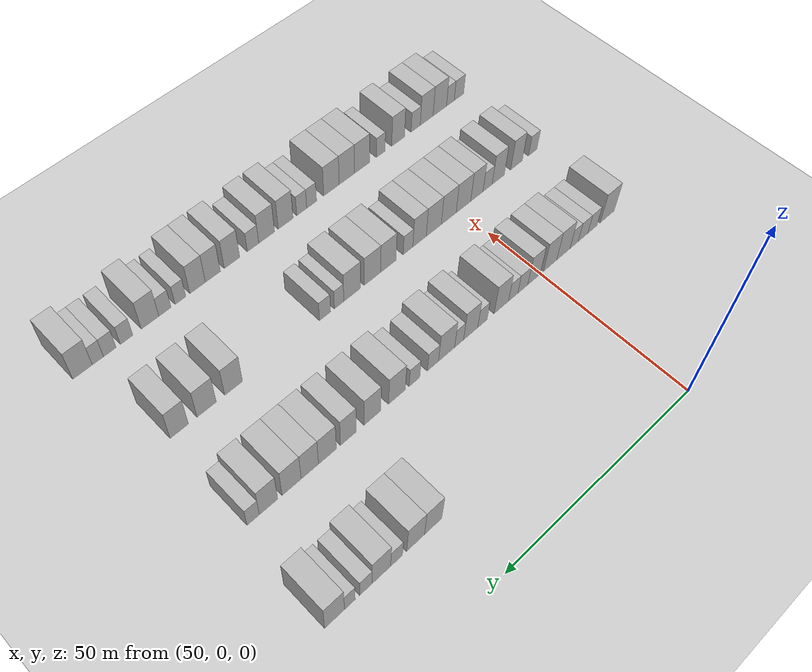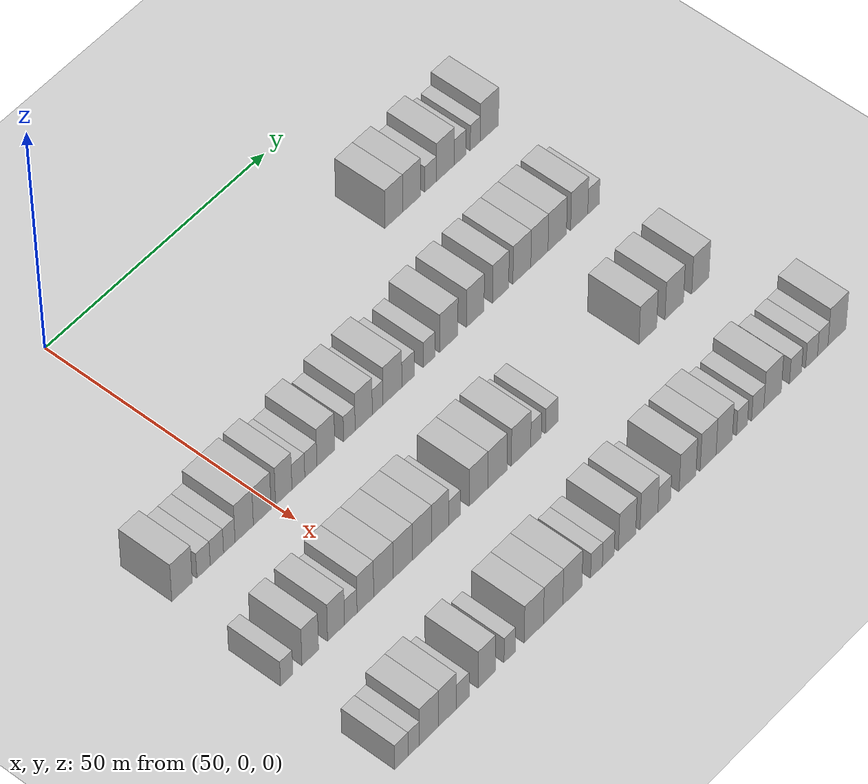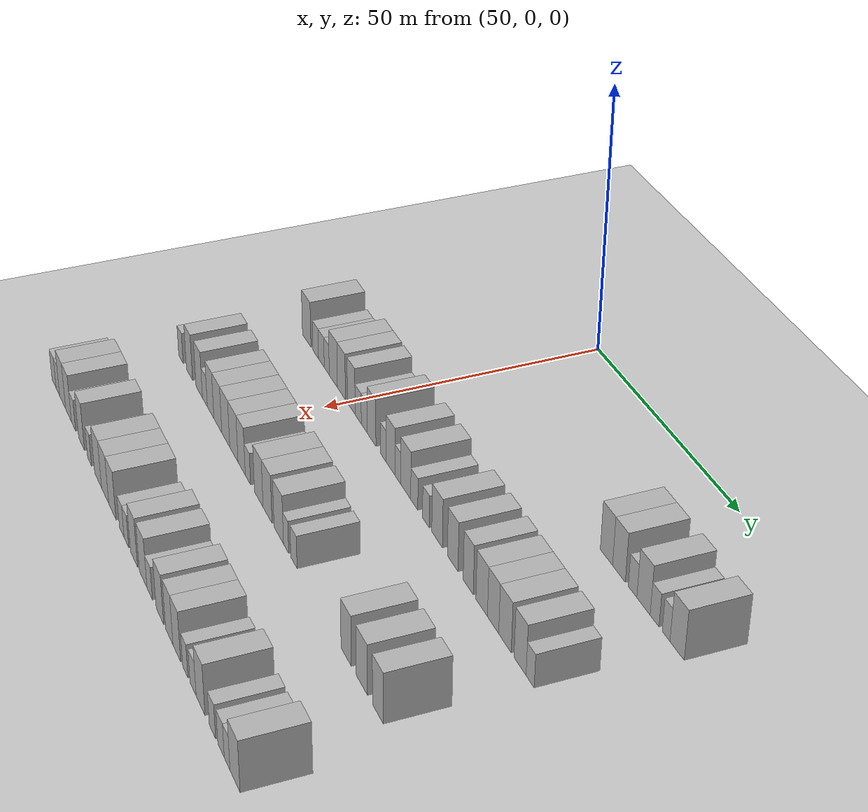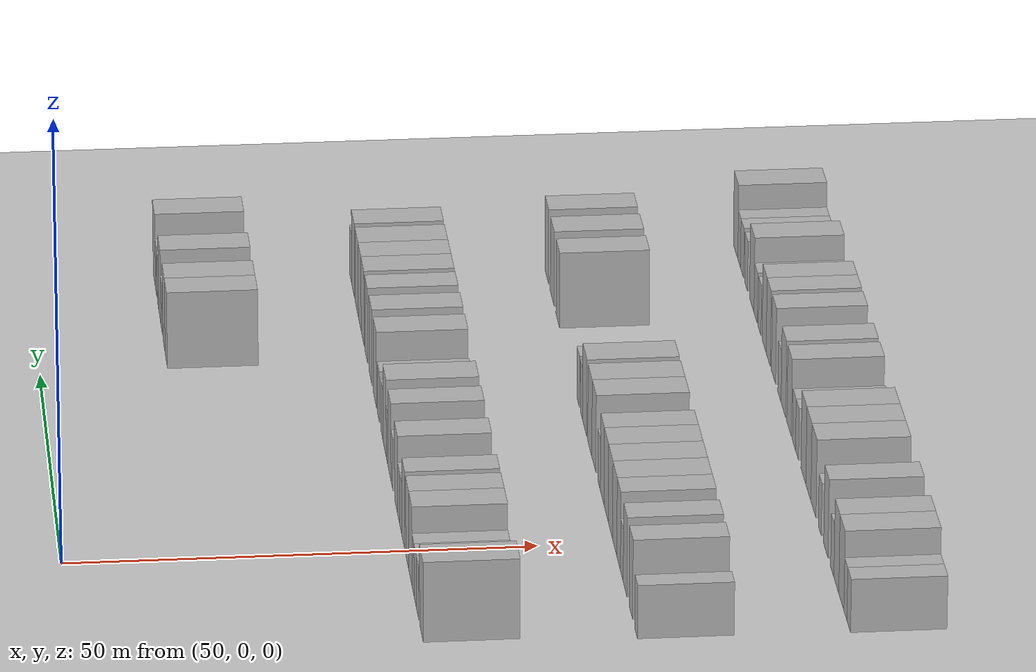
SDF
<sdf version="1.6">
 <world name="default">
  <include>
   <name>ground_plane_2</name>
   <uri>model://HANNAS_ground_plane</uri>
   <pose>100 0 0  0 0 0</pose>
  </include>
  <model name="building_490">
   <static>1</static>
   <pose>69.0000 52.8391 0 0.000000 0.000000 0.000000</pose>
   <link name="link">
    <pose>0 0 4.50 0 0 0</pose>
    <collision name="collision"><geometry><box><size>10.0000 4.1948 9.0000</size></box></geometry></collision>
    <visual name="visual">
     <cast_shadows>0</cast_shadows>
     <geometry><box><size>10.0000 4.1948 9.0000</size></box></geometry>
     <material>
      <script>
       <uri>model://HANNAS_wall/materials/scripts</uri>
       <uri>model://HANNAS_wall/materials/textures</uri>
       <name>vrc/HANNAS_wall</name>
      </script>
     </material>
    </visual>
   </link>
  </model>
  <model name="building_491">
   <static>1</static>
   <pose>69.0000 57.0705 0 0.000000 0.000000 0.000000</pose>
   <link name="link">
    <pose>0 0 4.50 0 0 0</pose>
    <collision name="collision"><geometry><box><size>10.0000 4.2680 9.0000</size></box></geometry></collision>
    <visual name="visual">
     <cast_shadows>0</cast_shadows>
     <geometry><box><size>10.0000 4.2680 9.0000</size></box></geometry>
     <material>
      <script>
       <uri>model://HANNAS_wall/materials/scripts</uri>
       <uri>model://HANNAS_wall/materials/textures</uri>
       <name>vrc/HANNAS_wall</name>
      </script>
     </material>
    </visual>
   </link>
  </model>
  <model name="building_492">
   <static>1</static>
   <pose>69.0000 61.6023 0 0.000000 0.000000 0.000000</pose>
   <link name="link">
    <pose>0 0 3.00 0 0 0</pose>
    <collision name="collision"><geometry><box><size>10.0000 2.7957 6.0000</size></box></geometry></collision>
    <visual name="visual">
     <cast_shadows>0</cast_shadows>
     <geometry><box><size>10.0000 2.7957 6.0000</size></box></geometry>
     <material>
      <script>
       <uri>model://HANNAS_wall/materials/scripts</uri>
       <uri>model://HANNAS_wall/materials/textures</uri>
       <name>vrc/HANNAS_wall</name>
      </script>
     </material>
    </visual>
   </link>
  </model>
  <model name="building_493">
   <static>1</static>
   <pose>69.0000 65.1499 0 0.000000 0.000000 0.000000</pose>
   <link name="link">
    <pose>0 0 4.50 0 0 0</pose>
    <collision name="collision"><geometry><box><size>10.0000 4.2995 9.0000</size></box></geometry></collision>
    <visual name="visual">
     <cast_shadows>0</cast_shadows>
     <geometry><box><size>10.0000 4.2995 9.0000</size></box></geometry>
     <material>
      <script>
       <uri>model://HANNAS_wall/materials/scripts</uri>
       <uri>model://HANNAS_wall/materials/textures</uri>
       <name>vrc/HANNAS_wall</name>
      </script>
     </material>
    </visual>
   </link>
  </model>
  <model name="building_494">
   <static>1</static>
   <pose>69.0000 68.6985 0 0.000000 0.000000 0.000000</pose>
   <link name="link">
    <pose>0 0 3.00 0 0 0</pose>
    <collision name="collision"><geometry><box><size>10.0000 2.7977 6.0000</size></box></geometry></collision>
    <visual name="visual">
     <cast_shadows>0</cast_shadows>
     <geometry><box><size>10.0000 2.7977 6.0000</size></box></geometry>
     <material>
      <script>
       <uri>model://HANNAS_wall/materials/scripts</uri>
       <uri>model://HANNAS_wall/materials/textures</uri>
       <name>vrc/HANNAS_wall</name>
      </script>
     </material>
    </visual>
   </link>
  </model>
  <model name="building_495">
   <static>1</static>
   <pose>69.0000 72.3098 0 0.000000 0.000000 0.000000</pose>
   <link name="link">
    <pose>0 0 3.00 0 0 0</pose>
    <collision name="collision"><geometry><box><size>10.0000 2.4251 6.0000</size></box></geometry></collision>
    <visual name="visual">
     <cast_shadows>0</cast_shadows>
     <geometry><box><size>10.0000 2.4251 6.0000</size></box></geometry>
     <material>
      <script>
       <uri>model://HANNAS_wall/materials/scripts</uri>
       <uri>model://HANNAS_wall/materials/textures</uri>
       <name>vrc/HANNAS_wall</name>
      </script>
     </material>
    </visual>
   </link>
  </model>
  <model name="building_496">
   <static>1</static>
   <pose>69.0000 75.7078 0 0.000000 0.000000 0.000000</pose>
   <link name="link">
    <pose>0 0 4.50 0 0 0</pose>
    <collision name="collision"><geometry><box><size>10.0000 4.3708 9.0000</size></box></geometry></collision>
    <visual name="visual">
     <cast_shadows>0</cast_shadows>
     <geometry><box><size>10.0000 4.3708 9.0000</size></box></geometry>
     <material>
      <script>
       <uri>model://HANNAS_wall/materials/scripts</uri>
       <uri>model://HANNAS_wall/materials/textures</uri>
       <name>vrc/HANNAS_wall</name>
      </script>
     </material>
    </visual>
   </link>
  </model>
  <model name="building_656">
   <static>1</static>
   <pose>91.0000 -20.5924 0 0.000000 0.000000 0.000000</pose>
   <link name="link">
    <pose>0 0 4.50 0 0 0</pose>
    <collision name="collision"><geometry><box><size>10.0000 4.4988 9.0000</size></box></geometry></collision>
    <visual name="visual">
     <cast_shadows>0</cast_shadows>
     <geometry><box><size>10.0000 4.4988 9.0000</size></box></geometry>
     <material>
      <script>
       <uri>model://HANNAS_wall/materials/scripts</uri>
       <uri>model://HANNAS_wall/materials/textures</uri>
       <name>vrc/HANNAS_wall</name>
      </script>
     </material>
    </visual>
   </link>
  </model>
  <model name="building_657">
   <static>1</static>
   <pose>91.0000 -15.8766 0 0.000000 0.000000 0.000000</pose>
   <link name="link">
    <pose>0 0 3.00 0 0 0</pose>
    <collision name="collision"><geometry><box><size>10.0000 2.9328 6.0000</size></box></geometry></collision>
    <visual name="visual">
     <cast_shadows>0</cast_shadows>
     <geometry><box><size>10.0000 2.9328 6.0000</size></box></geometry>
     <material>
      <script>
       <uri>model://HANNAS_wall/materials/scripts</uri>
       <uri>model://HANNAS_wall/materials/textures</uri>
       <name>vrc/HANNAS_wall</name>
      </script>
     </material>
    </visual>
   </link>
  </model>
  <model name="building_658">
   <static>1</static>
   <pose>91.0000 -12.9304 0 0.000000 0.000000 0.000000</pose>
   <link name="link">
    <pose>0 0 3.00 0 0 0</pose>
    <collision name="collision"><geometry><box><size>10.0000 2.9596 6.0000</size></box></geometry></collision>
    <visual name="visual">
     <cast_shadows>0</cast_shadows>
     <geometry><box><size>10.0000 2.9596 6.0000</size></box></geometry>
     <material>
      <script>
       <uri>model://HANNAS_wall/materials/scripts</uri>
       <uri>model://HANNAS_wall/materials/textures</uri>
       <name>vrc/HANNAS_wall</name>
      </script>
     </material>
    </visual>
   </link>
  </model>
  <model name="building_659">
   <static>1</static>
   <pose>91.0000 -10.1768 0 0.000000 0.000000 0.000000</pose>
   <link name="link">
    <pose>0 0 3.00 0 0 0</pose>
    <collision name="collision"><geometry><box><size>10.0000 2.5476 6.0000</size></box></geometry></collision>
    <visual name="visual">
     <cast_shadows>0</cast_shadows>
     <geometry><box><size>10.0000 2.5476 6.0000</size></box></geometry>
     <material>
      <script>
       <uri>model://HANNAS_wall/materials/scripts</uri>
       <uri>model://HANNAS_wall/materials/textures</uri>
       <name>vrc/HANNAS_wall</name>
      </script>
     </material>
    </visual>
   </link>
  </model>
  <model name="building_660">
   <static>1</static>
   <pose>91.0000 -6.8699 0 0.000000 0.000000 0.000000</pose>
   <link name="link">
    <pose>0 0 4.50 0 0 0</pose>
    <collision name="collision"><geometry><box><size>10.0000 4.0663 9.0000</size></box></geometry></collision>
    <visual name="visual">
     <cast_shadows>0</cast_shadows>
     <geometry><box><size>10.0000 4.0663 9.0000</size></box></geometry>
     <material>
      <script>
       <uri>model://HANNAS_wall/materials/scripts</uri>
       <uri>model://HANNAS_wall/materials/textures</uri>
       <name>vrc/HANNAS_wall</name>
      </script>
     </material>
    </visual>
   </link>
  </model>
  <model name="building_661">
   <static>1</static>
   <pose>91.0000 -2.8523 0 0.000000 0.000000 0.000000</pose>
   <link name="link">
    <pose>0 0 4.50 0 0 0</pose>
    <collision name="collision"><geometry><box><size>10.0000 3.9689 9.0000</size></box></geometry></collision>
    <visual name="visual">
     <cast_shadows>0</cast_shadows>
     <geometry><box><size>10.0000 3.9689 9.0000</size></box></geometry>
     <material>
      <script>
       <uri>model://HANNAS_wall/materials/scripts</uri>
       <uri>model://HANNAS_wall/materials/textures</uri>
       <name>vrc/HANNAS_wall</name>
      </script>
     </material>
    </visual>
   </link>
  </model>
  <model name="building_662">
   <static>1</static>
   <pose>91.0000 1.9757 0 0.000000 0.000000 0.000000</pose>
   <link name="link">
    <pose>0 0 4.50 0 0 0</pose>
    <collision name="collision"><geometry><box><size>10.0000 3.6871 9.0000</size></box></geometry></collision>
    <visual name="visual">
     <cast_shadows>0</cast_shadows>
     <geometry><box><size>10.0000 3.6871 9.0000</size></box></geometry>
     <material>
      <script>
       <uri>model://HANNAS_wall/materials/scripts</uri>
       <uri>model://HANNAS_wall/materials/textures</uri>
       <name>vrc/HANNAS_wall</name>
      </script>
     </material>
    </visual>
   </link>
  </model>
  <model name="building_663">
   <static>1</static>
   <pose>91.0000 5.2694 0 0.000000 0.000000 0.000000</pose>
   <link name="link">
    <pose>0 0 3.00 0 0 0</pose>
    <collision name="collision"><geometry><box><size>10.0000 2.9002 6.0000</size></box></geometry></collision>
    <visual name="visual">
     <cast_shadows>0</cast_shadows>
     <geometry><box><size>10.0000 2.9002 6.0000</size></box></geometry>
     <material>
      <script>
       <uri>model://HANNAS_wall/materials/scripts</uri>
       <uri>model://HANNAS_wall/materials/textures</uri>
       <name>vrc/HANNAS_wall</name>
      </script>
     </material>
    </visual>
   </link>
  </model>
  <model name="building_664">
   <static>1</static>
   <pose>91.0000 8.0894 0 0.000000 0.000000 0.000000</pose>
   <link name="link">
    <pose>0 0 3.00 0 0 0</pose>
    <collision name="collision"><geometry><box><size>10.0000 2.7400 6.0000</size></box></geometry></collision>
    <visual name="visual">
     <cast_shadows>0</cast_shadows>
     <geometry><box><size>10.0000 2.7400 6.0000</size></box></geometry>
     <material>
      <script>
       <uri>model://HANNAS_wall/materials/scripts</uri>
       <uri>model://HANNAS_wall/materials/textures</uri>
       <name>vrc/HANNAS_wall</name>
      </script>
     </material>
    </visual>
   </link>
  </model>
  <model name="building_665">
   <static>1</static>
   <pose>91.0000 11.4889 0 0.000000 0.000000 0.000000</pose>
   <link name="link">
    <pose>0 0 4.50 0 0 0</pose>
    <collision name="collision"><geometry><box><size>10.0000 4.0589 9.0000</size></box></geometry></collision>
    <visual name="visual">
     <cast_shadows>0</cast_shadows>
     <geometry><box><size>10.0000 4.0589 9.0000</size></box></geometry>
     <material>
      <script>
       <uri>model://HANNAS_wall/materials/scripts</uri>
       <uri>model://HANNAS_wall/materials/textures</uri>
       <name>vrc/HANNAS_wall</name>
      </script>
     </material>
    </visual>
   </link>
  </model>
  <model name="building_666">
   <static>1</static>
   <pose>91.0000 16.8378 0 0.000000 0.000000 0.000000</pose>
   <link name="link">
    <pose>0 0 3.00 0 0 0</pose>
    <collision name="collision"><geometry><box><size>10.0000 2.6390 6.0000</size></box></geometry></collision>
    <visual name="visual">
     <cast_shadows>0</cast_shadows>
     <geometry><box><size>10.0000 2.6390 6.0000</size></box></geometry>
     <material>
      <script>
       <uri>model://HANNAS_wall/materials/scripts</uri>
       <uri>model://HANNAS_wall/materials/textures</uri>
       <name>vrc/HANNAS_wall</name>
      </script>
     </material>
    </visual>
   </link>
  </model>
  <model name="building_667">
   <static>1</static>
   <pose>91.0000 20.1233 0 0.000000 0.000000 0.000000</pose>
   <link name="link">
    <pose>0 0 4.50 0 0 0</pose>
    <collision name="collision"><geometry><box><size>10.0000 3.9320 9.0000</size></box></geometry></collision>
    <visual name="visual">
     <cast_shadows>0</cast_shadows>
     <geometry><box><size>10.0000 3.9320 9.0000</size></box></geometry>
     <material>
      <script>
       <uri>model://HANNAS_wall/materials/scripts</uri>
       <uri>model://HANNAS_wall/materials/textures</uri>
       <name>vrc/HANNAS_wall</name>
      </script>
     </material>
    </visual>
   </link>
  </model>
  <model name="building_668">
   <static>1</static>
   <pose>91.0000 23.3096 0 0.000000 0.000000 0.000000</pose>
   <link name="link">
    <pose>0 0 3.00 0 0 0</pose>
    <collision name="collision"><geometry><box><size>10.0000 2.4405 6.0000</size></box></geometry></collision>
    <visual name="visual">
     <cast_shadows>0</cast_shadows>
     <geometry><box><size>10.0000 2.4405 6.0000</size></box></geometry>
     <material>
      <script>
       <uri>model://HANNAS_wall/materials/scripts</uri>
       <uri>model://HANNAS_wall/materials/textures</uri>
       <name>vrc/HANNAS_wall</name>
      </script>
     </material>
    </visual>
   </link>
  </model>
  <model name="building_669">
   <static>1</static>
   <pose>91.0000 26.7113 0 0.000000 0.000000 0.000000</pose>
   <link name="link">
    <pose>0 0 4.50 0 0 0</pose>
    <collision name="collision"><geometry><box><size>10.0000 4.3628 9.0000</size></box></geometry></collision>
    <visual name="visual">
     <cast_shadows>0</cast_shadows>
     <geometry><box><size>10.0000 4.3628 9.0000</size></box></geometry>
     <material>
      <script>
       <uri>model://HANNAS_wall/materials/scripts</uri>
       <uri>model://HANNAS_wall/materials/textures</uri>
       <name>vrc/HANNAS_wall</name>
      </script>
     </material>
    </visual>
   </link>
  </model>
  <model name="building_670">
   <static>1</static>
   <pose>91.0000 30.3791 0 0.000000 0.000000 0.000000</pose>
   <link name="link">
    <pose>0 0 3.00 0 0 0</pose>
    <collision name="collision"><geometry><box><size>10.0000 2.9728 6.0000</size></box></geometry></collision>
    <visual name="visual">
     <cast_shadows>0</cast_shadows>
     <geometry><box><size>10.0000 2.9728 6.0000</size></box></geometry>
     <material>
      <script>
       <uri>model://HANNAS_wall/materials/scripts</uri>
       <uri>model://HANNAS_wall/materials/textures</uri>
       <name>vrc/HANNAS_wall</name>
      </script>
     </material>
    </visual>
   </link>
  </model>
  <model name="building_671">
   <static>1</static>
   <pose>91.0000 35.2630 0 0.000000 0.000000 0.000000</pose>
   <link name="link">
    <pose>0 0 3.00 0 0 0</pose>
    <collision name="collision"><geometry><box><size>10.0000 2.7950 6.0000</size></box></geometry></collision>
    <visual name="visual">
     <cast_shadows>0</cast_shadows>
     <geometry><box><size>10.0000 2.7950 6.0000</size></box></geometry>
     <material>
      <script>
       <uri>model://HANNAS_wall/materials/scripts</uri>
       <uri>model://HANNAS_wall/materials/textures</uri>
       <name>vrc/HANNAS_wall</name>
      </script>
     </material>
    </visual>
   </link>
  </model>
  <model name="building_672">
   <static>1</static>
   <pose>91.0000 39.8103 0 0.000000 0.000000 0.000000</pose>
   <link name="link">
    <pose>0 0 4.50 0 0 0</pose>
    <collision name="collision"><geometry><box><size>10.0000 4.2995 9.0000</size></box></geometry></collision>
    <visual name="visual">
     <cast_shadows>0</cast_shadows>
     <geometry><box><size>10.0000 4.2995 9.0000</size></box></geometry>
     <material>
      <script>
       <uri>model://HANNAS_wall/materials/scripts</uri>
       <uri>model://HANNAS_wall/materials/textures</uri>
       <name>vrc/HANNAS_wall</name>
      </script>
     </material>
    </visual>
   </link>
  </model>
  <model name="building_673">
   <static>1</static>
   <pose>91.0000 46.0279 0 0.000000 0.000000 0.000000</pose>
   <link name="link">
    <pose>0 0 4.50 0 0 0</pose>
    <collision name="collision"><geometry><box><size>10.0000 4.1357 9.0000</size></box></geometry></collision>
    <visual name="visual">
     <cast_shadows>0</cast_shadows>
     <geometry><box><size>10.0000 4.1357 9.0000</size></box></geometry>
     <material>
      <script>
       <uri>model://HANNAS_wall/materials/scripts</uri>
       <uri>model://HANNAS_wall/materials/textures</uri>
       <name>vrc/HANNAS_wall</name>
      </script>
     </material>
    </visual>
   </link>
  </model>
  <model name="building_674">
   <static>1</static>
   <pose>91.0000 52.0138 0 0.000000 0.000000 0.000000</pose>
   <link name="link">
    <pose>0 0 4.50 0 0 0</pose>
    <collision name="collision"><geometry><box><size>10.0000 3.8360 9.0000</size></box></geometry></collision>
    <visual name="visual">
     <cast_shadows>0</cast_shadows>
     <geometry><box><size>10.0000 3.8360 9.0000</size></box></geometry>
     <material>
      <script>
       <uri>model://HANNAS_wall/materials/scripts</uri>
       <uri>model://HANNAS_wall/materials/textures</uri>
       <name>vrc/HANNAS_wall</name>
      </script>
     </material>
    </visual>
   </link>
  </model>
  <model name="building_675">
   <static>1</static>
   <pose>91.0000 57.0648 0 0.000000 0.000000 0.000000</pose>
   <link name="link">
    <pose>0 0 4.50 0 0 0</pose>
    <collision name="collision"><geometry><box><size>10.0000 4.2661 9.0000</size></box></geometry></collision>
    <visual name="visual">
     <cast_shadows>0</cast_shadows>
     <geometry><box><size>10.0000 4.2661 9.0000</size></box></geometry>
     <material>
      <script>
       <uri>model://HANNAS_wall/materials/scripts</uri>
       <uri>model://HANNAS_wall/materials/textures</uri>
       <name>vrc/HANNAS_wall</name>
      </script>
     </material>
    </visual>
   </link>
  </model>
  <model name="building_676">
   <static>1</static>
   <pose>91.0000 61.2523 0 0.000000 0.000000 0.000000</pose>
   <link name="link">
    <pose>0 0 4.50 0 0 0</pose>
    <collision name="collision"><geometry><box><size>10.0000 4.1088 9.0000</size></box></geometry></collision>
    <visual name="visual">
     <cast_shadows>0</cast_shadows>
     <geometry><box><size>10.0000 4.1088 9.0000</size></box></geometry>
     <material>
      <script>
       <uri>model://HANNAS_wall/materials/scripts</uri>
       <uri>model://HANNAS_wall/materials/textures</uri>
       <name>vrc/HANNAS_wall</name>
      </script>
     </material>
    </visual>
   </link>
  </model>
  <model name="building_677">
   <static>1</static>
   <pose>91.0000 65.5264 0 0.000000 0.000000 0.000000</pose>
   <link name="link">
    <pose>0 0 4.50 0 0 0</pose>
    <collision name="collision"><geometry><box><size>10.0000 4.4394 9.0000</size></box></geometry></collision>
    <visual name="visual">
     <cast_shadows>0</cast_shadows>
     <geometry><box><size>10.0000 4.4394 9.0000</size></box></geometry>
     <material>
      <script>
       <uri>model://HANNAS_wall/materials/scripts</uri>
       <uri>model://HANNAS_wall/materials/textures</uri>
       <name>vrc/HANNAS_wall</name>
      </script>
     </material>
    </visual>
   </link>
  </model>
  <model name="building_678">
   <static>1</static>
   <pose>91.0000 70.8225 0 0.000000 0.000000 0.000000</pose>
   <link name="link">
    <pose>0 0 4.50 0 0 0</pose>
    <collision name="collision"><geometry><box><size>10.0000 4.1528 9.0000</size></box></geometry></collision>
    <visual name="visual">
     <cast_shadows>0</cast_shadows>
     <geometry><box><size>10.0000 4.1528 9.0000</size></box></geometry>
     <material>
      <script>
       <uri>model://HANNAS_wall/materials/scripts</uri>
       <uri>model://HANNAS_wall/materials/textures</uri>
       <name>vrc/HANNAS_wall</name>
      </script>
     </material>
    </visual>
   </link>
  </model>
  <model name="building_679">
   <static>1</static>
   <pose>91.0000 74.2837 0 0.000000 0.000000 0.000000</pose>
   <link name="link">
    <pose>0 0 3.00 0 0 0</pose>
    <collision name="collision"><geometry><box><size>10.0000 2.7696 6.0000</size></box></geometry></collision>
    <visual name="visual">
     <cast_shadows>0</cast_shadows>
     <geometry><box><size>10.0000 2.7696 6.0000</size></box></geometry>
     <material>
      <script>
       <uri>model://HANNAS_wall/materials/scripts</uri>
       <uri>model://HANNAS_wall/materials/textures</uri>
       <name>vrc/HANNAS_wall</name>
      </script>
     </material>
    </visual>
   </link>
  </model>
  <model name="building_836">
   <static>1</static>
   <pose>113.0000 -22.5948 0 0.000000 0.000000 0.000000</pose>
   <link name="link">
    <pose>0 0 3.00 0 0 0</pose>
    <collision name="collision"><geometry><box><size>10.0000 2.7037 6.0000</size></box></geometry></collision>
    <visual name="visual">
     <cast_shadows>0</cast_shadows>
     <geometry><box><size>10.0000 2.7037 6.0000</size></box></geometry>
     <material>
      <script>
       <uri>model://HANNAS_wall/materials/scripts</uri>
       <uri>model://HANNAS_wall/materials/textures</uri>
       <name>vrc/HANNAS_wall</name>
      </script>
     </material>
    </visual>
   </link>
  </model>
  <model name="building_837">
   <static>1</static>
   <pose>113.0000 -17.4127 0 0.000000 0.000000 0.000000</pose>
   <link name="link">
    <pose>0 0 4.50 0 0 0</pose>
    <collision name="collision"><geometry><box><size>10.0000 3.6605 9.0000</size></box></geometry></collision>
    <visual name="visual">
     <cast_shadows>0</cast_shadows>
     <geometry><box><size>10.0000 3.6605 9.0000</size></box></geometry>
     <material>
      <script>
       <uri>model://HANNAS_wall/materials/scripts</uri>
       <uri>model://HANNAS_wall/materials/textures</uri>
       <name>vrc/HANNAS_wall</name>
      </script>
     </material>
    </visual>
   </link>
  </model>
  <model name="building_838">
   <static>1</static>
   <pose>113.0000 -11.6968 0 0.000000 0.000000 0.000000</pose>
   <link name="link">
    <pose>0 0 4.50 0 0 0</pose>
    <collision name="collision"><geometry><box><size>10.0000 3.7713 9.0000</size></box></geometry></collision>
    <visual name="visual">
     <cast_shadows>0</cast_shadows>
     <geometry><box><size>10.0000 3.7713 9.0000</size></box></geometry>
     <material>
      <script>
       <uri>model://HANNAS_wall/materials/scripts</uri>
       <uri>model://HANNAS_wall/materials/textures</uri>
       <name>vrc/HANNAS_wall</name>
      </script>
     </material>
    </visual>
   </link>
  </model>
  <model name="building_839">
   <static>1</static>
   <pose>113.0000 -8.4147 0 0.000000 0.000000 0.000000</pose>
   <link name="link">
    <pose>0 0 3.00 0 0 0</pose>
    <collision name="collision"><geometry><box><size>10.0000 2.7927 6.0000</size></box></geometry></collision>
    <visual name="visual">
     <cast_shadows>0</cast_shadows>
     <geometry><box><size>10.0000 2.7927 6.0000</size></box></geometry>
     <material>
      <script>
       <uri>model://HANNAS_wall/materials/scripts</uri>
       <uri>model://HANNAS_wall/materials/textures</uri>
       <name>vrc/HANNAS_wall</name>
      </script>
     </material>
    </visual>
   </link>
  </model>
  <model name="building_840">
   <static>1</static>
   <pose>113.0000 -5.1535 0 0.000000 0.000000 0.000000</pose>
   <link name="link">
    <pose>0 0 4.50 0 0 0</pose>
    <collision name="collision"><geometry><box><size>10.0000 3.7298 9.0000</size></box></geometry></collision>
    <visual name="visual">
     <cast_shadows>0</cast_shadows>
     <geometry><box><size>10.0000 3.7298 9.0000</size></box></geometry>
     <material>
      <script>
       <uri>model://HANNAS_wall/materials/scripts</uri>
       <uri>model://HANNAS_wall/materials/textures</uri>
       <name>vrc/HANNAS_wall</name>
      </script>
     </material>
    </visual>
   </link>
  </model>
  <model name="building_841">
   <static>1</static>
   <pose>113.0000 -1.1091 0 0.000000 0.000000 0.000000</pose>
   <link name="link">
    <pose>0 0 4.50 0 0 0</pose>
    <collision name="collision"><geometry><box><size>10.0000 4.3591 9.0000</size></box></geometry></collision>
    <visual name="visual">
     <cast_shadows>0</cast_shadows>
     <geometry><box><size>10.0000 4.3591 9.0000</size></box></geometry>
     <material>
      <script>
       <uri>model://HANNAS_wall/materials/scripts</uri>
       <uri>model://HANNAS_wall/materials/textures</uri>
       <name>vrc/HANNAS_wall</name>
      </script>
     </material>
    </visual>
   </link>
  </model>
  <model name="building_842">
   <static>1</static>
   <pose>113.0000 3.2449 0 0.000000 0.000000 0.000000</pose>
   <link name="link">
    <pose>0 0 4.50 0 0 0</pose>
    <collision name="collision"><geometry><box><size>10.0000 4.3489 9.0000</size></box></geometry></collision>
    <visual name="visual">
     <cast_shadows>0</cast_shadows>
     <geometry><box><size>10.0000 4.3489 9.0000</size></box></geometry>
     <material>
      <script>
       <uri>model://HANNAS_wall/materials/scripts</uri>
       <uri>model://HANNAS_wall/materials/textures</uri>
       <name>vrc/HANNAS_wall</name>
      </script>
     </material>
    </visual>
   </link>
  </model>
  <model name="building_843">
   <static>1</static>
   <pose>113.0000 7.6173 0 0.000000 0.000000 0.000000</pose>
   <link name="link">
    <pose>0 0 4.50 0 0 0</pose>
    <collision name="collision"><geometry><box><size>10.0000 4.3960 9.0000</size></box></geometry></collision>
    <visual name="visual">
     <cast_shadows>0</cast_shadows>
     <geometry><box><size>10.0000 4.3960 9.0000</size></box></geometry>
     <material>
      <script>
       <uri>model://HANNAS_wall/materials/scripts</uri>
       <uri>model://HANNAS_wall/materials/textures</uri>
       <name>vrc/HANNAS_wall</name>
      </script>
     </material>
    </visual>
   </link>
  </model>
  <model name="building_844">
   <static>1</static>
   <pose>113.0000 11.7271 0 0.000000 0.000000 0.000000</pose>
   <link name="link">
    <pose>0 0 4.50 0 0 0</pose>
    <collision name="collision"><geometry><box><size>10.0000 3.8236 9.0000</size></box></geometry></collision>
    <visual name="visual">
     <cast_shadows>0</cast_shadows>
     <geometry><box><size>10.0000 3.8236 9.0000</size></box></geometry>
     <material>
      <script>
       <uri>model://HANNAS_wall/materials/scripts</uri>
       <uri>model://HANNAS_wall/materials/textures</uri>
       <name>vrc/HANNAS_wall</name>
      </script>
     </material>
    </visual>
   </link>
  </model>
  <model name="building_845">
   <static>1</static>
   <pose>113.0000 15.0069 0 0.000000 0.000000 0.000000</pose>
   <link name="link">
    <pose>0 0 3.00 0 0 0</pose>
    <collision name="collision"><geometry><box><size>10.0000 2.7361 6.0000</size></box></geometry></collision>
    <visual name="visual">
     <cast_shadows>0</cast_shadows>
     <geometry><box><size>10.0000 2.7361 6.0000</size></box></geometry>
     <material>
      <script>
       <uri>model://HANNAS_wall/materials/scripts</uri>
       <uri>model://HANNAS_wall/materials/textures</uri>
       <name>vrc/HANNAS_wall</name>
      </script>
     </material>
    </visual>
   </link>
  </model>
  <model name="building_846">
   <static>1</static>
   <pose>113.0000 20.5308 0 0.000000 0.000000 0.000000</pose>
   <link name="link">
    <pose>0 0 4.50 0 0 0</pose>
    <collision name="collision"><geometry><box><size>10.0000 4.3116 9.0000</size></box></geometry></collision>
    <visual name="visual">
     <cast_shadows>0</cast_shadows>
     <geometry><box><size>10.0000 4.3116 9.0000</size></box></geometry>
     <material>
      <script>
       <uri>model://HANNAS_wall/materials/scripts</uri>
       <uri>model://HANNAS_wall/materials/textures</uri>
       <name>vrc/HANNAS_wall</name>
      </script>
     </material>
    </visual>
   </link>
  </model>
  <model name="building_847">
   <static>1</static>
   <pose>113.0000 24.8865 0 0.000000 0.000000 0.000000</pose>
   <link name="link">
    <pose>0 0 4.50 0 0 0</pose>
    <collision name="collision"><geometry><box><size>10.0000 4.3998 9.0000</size></box></geometry></collision>
    <visual name="visual">
     <cast_shadows>0</cast_shadows>
     <geometry><box><size>10.0000 4.3998 9.0000</size></box></geometry>
     <material>
      <script>
       <uri>model://HANNAS_wall/materials/scripts</uri>
       <uri>model://HANNAS_wall/materials/textures</uri>
       <name>vrc/HANNAS_wall</name>
      </script>
     </material>
    </visual>
   </link>
  </model>
  <model name="building_848">
   <static>1</static>
   <pose>113.0000 30.3362 0 0.000000 0.000000 0.000000</pose>
   <link name="link">
    <pose>0 0 4.50 0 0 0</pose>
    <collision name="collision"><geometry><box><size>10.0000 4.4996 9.0000</size></box></geometry></collision>
    <visual name="visual">
     <cast_shadows>0</cast_shadows>
     <geometry><box><size>10.0000 4.4996 9.0000</size></box></geometry>
     <material>
      <script>
       <uri>model://HANNAS_wall/materials/scripts</uri>
       <uri>model://HANNAS_wall/materials/textures</uri>
       <name>vrc/HANNAS_wall</name>
      </script>
     </material>
    </visual>
   </link>
  </model>
  <model name="building_849">
   <static>1</static>
   <pose>113.0000 33.8249 0 0.000000 0.000000 0.000000</pose>
   <link name="link">
    <pose>0 0 3.00 0 0 0</pose>
    <collision name="collision"><geometry><box><size>10.0000 2.4778 6.0000</size></box></geometry></collision>
    <visual name="visual">
     <cast_shadows>0</cast_shadows>
     <geometry><box><size>10.0000 2.4778 6.0000</size></box></geometry>
     <material>
      <script>
       <uri>model://HANNAS_wall/materials/scripts</uri>
       <uri>model://HANNAS_wall/materials/textures</uri>
       <name>vrc/HANNAS_wall</name>
      </script>
     </material>
    </visual>
   </link>
  </model>
  <model name="building_850">
   <static>1</static>
   <pose>113.0000 37.5063 0 0.000000 0.000000 0.000000</pose>
   <link name="link">
    <pose>0 0 3.00 0 0 0</pose>
    <collision name="collision"><geometry><box><size>10.0000 2.8849 6.0000</size></box></geometry></collision>
    <visual name="visual">
     <cast_shadows>0</cast_shadows>
     <geometry><box><size>10.0000 2.8849 6.0000</size></box></geometry>
     <material>
      <script>
       <uri>model://HANNAS_wall/materials/scripts</uri>
       <uri>model://HANNAS_wall/materials/textures</uri>
       <name>vrc/HANNAS_wall</name>
      </script>
     </material>
    </visual>
   </link>
  </model>
  <model name="building_851">
   <static>1</static>
   <pose>113.0000 60.3199 0 0.000000 0.000000 0.000000</pose>
   <link name="link">
    <pose>0 0 4.50 0 0 0</pose>
    <collision name="collision"><geometry><box><size>10.0000 4.2475 9.0000</size></box></geometry></collision>
    <visual name="visual">
     <cast_shadows>0</cast_shadows>
     <geometry><box><size>10.0000 4.2475 9.0000</size></box></geometry>
     <material>
      <script>
       <uri>model://HANNAS_wall/materials/scripts</uri>
       <uri>model://HANNAS_wall/materials/textures</uri>
       <name>vrc/HANNAS_wall</name>
      </script>
     </material>
    </visual>
   </link>
  </model>
  <model name="building_852">
   <static>1</static>
   <pose>113.0000 66.6812 0 0.000000 0.000000 0.000000</pose>
   <link name="link">
    <pose>0 0 4.50 0 0 0</pose>
    <collision name="collision"><geometry><box><size>10.0000 4.4751 9.0000</size></box></geometry></collision>
    <visual name="visual">
     <cast_shadows>0</cast_shadows>
     <geometry><box><size>10.0000 4.4751 9.0000</size></box></geometry>
     <material>
      <script>
       <uri>model://HANNAS_wall/materials/scripts</uri>
       <uri>model://HANNAS_wall/materials/textures</uri>
       <name>vrc/HANNAS_wall</name>
      </script>
     </material>
    </visual>
   </link>
  </model>
  <model name="building_853">
   <static>1</static>
   <pose>113.0000 73.0015 0 0.000000 0.000000 0.000000</pose>
   <link name="link">
    <pose>0 0 4.50 0 0 0</pose>
    <collision name="collision"><geometry><box><size>10.0000 4.1655 9.0000</size></box></geometry></collision>
    <visual name="visual">
     <cast_shadows>0</cast_shadows>
     <geometry><box><size>10.0000 4.1655 9.0000</size></box></geometry>
     <material>
      <script>
       <uri>model://HANNAS_wall/materials/scripts</uri>
       <uri>model://HANNAS_wall/materials/textures</uri>
       <name>vrc/HANNAS_wall</name>
      </script>
     </material>
    </visual>
   </link>
  </model>
  <model name="building_1018">
   <static>1</static>
   <pose>135.0000 -22.8980 0 0.000000 0.000000 0.000000</pose>
   <link name="link">
    <pose>0 0 3.00 0 0 0</pose>
    <collision name="collision"><geometry><box><size>10.0000 2.9890 6.0000</size></box></geometry></collision>
    <visual name="visual">
     <cast_shadows>0</cast_shadows>
     <geometry><box><size>10.0000 2.9890 6.0000</size></box></geometry>
     <material>
      <script>
       <uri>model://HANNAS_wall/materials/scripts</uri>
       <uri>model://HANNAS_wall/materials/textures</uri>
       <name>vrc/HANNAS_wall</name>
      </script>
     </material>
    </visual>
   </link>
  </model>
  <model name="building_1019">
   <static>1</static>
   <pose>135.0000 -20.1654 0 0.000000 0.000000 0.000000</pose>
   <link name="link">
    <pose>0 0 3.00 0 0 0</pose>
    <collision name="collision"><geometry><box><size>10.0000 2.4761 6.0000</size></box></geometry></collision>
    <visual name="visual">
     <cast_shadows>0</cast_shadows>
     <geometry><box><size>10.0000 2.4761 6.0000</size></box></geometry>
     <material>
      <script>
       <uri>model://HANNAS_wall/materials/scripts</uri>
       <uri>model://HANNAS_wall/materials/textures</uri>
       <name>vrc/HANNAS_wall</name>
      </script>
     </material>
    </visual>
   </link>
  </model>
  <model name="building_1020">
   <static>1</static>
   <pose>135.0000 -16.8101 0 0.000000 0.000000 0.000000</pose>
   <link name="link">
    <pose>0 0 4.50 0 0 0</pose>
    <collision name="collision"><geometry><box><size>10.0000 4.2346 9.0000</size></box></geometry></collision>
    <visual name="visual">
     <cast_shadows>0</cast_shadows>
     <geometry><box><size>10.0000 4.2346 9.0000</size></box></geometry>
     <material>
      <script>
       <uri>model://HANNAS_wall/materials/scripts</uri>
       <uri>model://HANNAS_wall/materials/textures</uri>
       <name>vrc/HANNAS_wall</name>
      </script>
     </material>
    </visual>
   </link>
  </model>
  <model name="building_1021">
   <static>1</static>
   <pose>135.0000 -12.6958 0 0.000000 0.000000 0.000000</pose>
   <link name="link">
    <pose>0 0 4.50 0 0 0</pose>
    <collision name="collision"><geometry><box><size>10.0000 3.9940 9.0000</size></box></geometry></collision>
    <visual name="visual">
     <cast_shadows>0</cast_shadows>
     <geometry><box><size>10.0000 3.9940 9.0000</size></box></geometry>
     <material>
      <script>
       <uri>model://HANNAS_wall/materials/scripts</uri>
       <uri>model://HANNAS_wall/materials/textures</uri>
       <name>vrc/HANNAS_wall</name>
      </script>
     </material>
    </visual>
   </link>
  </model>
  <model name="building_1022">
   <static>1</static>
   <pose>135.0000 -9.2839 0 0.000000 0.000000 0.000000</pose>
   <link name="link">
    <pose>0 0 3.00 0 0 0</pose>
    <collision name="collision"><geometry><box><size>10.0000 2.8298 6.0000</size></box></geometry></collision>
    <visual name="visual">
     <cast_shadows>0</cast_shadows>
     <geometry><box><size>10.0000 2.8298 6.0000</size></box></geometry>
     <material>
      <script>
       <uri>model://HANNAS_wall/materials/scripts</uri>
       <uri>model://HANNAS_wall/materials/textures</uri>
       <name>vrc/HANNAS_wall</name>
      </script>
     </material>
    </visual>
   </link>
  </model>
  <model name="building_1023">
   <static>1</static>
   <pose>135.0000 -3.9388 0 0.000000 0.000000 0.000000</pose>
   <link name="link">
    <pose>0 0 4.50 0 0 0</pose>
    <collision name="collision"><geometry><box><size>10.0000 3.8604 9.0000</size></box></geometry></collision>
    <visual name="visual">
     <cast_shadows>0</cast_shadows>
     <geometry><box><size>10.0000 3.8604 9.0000</size></box></geometry>
     <material>
      <script>
       <uri>model://HANNAS_wall/materials/scripts</uri>
       <uri>model://HANNAS_wall/materials/textures</uri>
       <name>vrc/HANNAS_wall</name>
      </script>
     </material>
    </visual>
   </link>
  </model>
  <model name="building_1024">
   <static>1</static>
   <pose>135.0000 1.2738 0 0.000000 0.000000 0.000000</pose>
   <link name="link">
    <pose>0 0 3.00 0 0 0</pose>
    <collision name="collision"><geometry><box><size>10.0000 2.5650 6.0000</size></box></geometry></collision>
    <visual name="visual">
     <cast_shadows>0</cast_shadows>
     <geometry><box><size>10.0000 2.5650 6.0000</size></box></geometry>
     <material>
      <script>
       <uri>model://HANNAS_wall/materials/scripts</uri>
       <uri>model://HANNAS_wall/materials/textures</uri>
       <name>vrc/HANNAS_wall</name>
      </script>
     </material>
    </visual>
   </link>
  </model>
  <model name="building_1025">
   <static>1</static>
   <pose>135.0000 6.7474 0 0.000000 0.000000 0.000000</pose>
   <link name="link">
    <pose>0 0 4.50 0 0 0</pose>
    <collision name="collision"><geometry><box><size>10.0000 4.3822 9.0000</size></box></geometry></collision>
    <visual name="visual">
     <cast_shadows>0</cast_shadows>
     <geometry><box><size>10.0000 4.3822 9.0000</size></box></geometry>
     <material>
      <script>
       <uri>model://HANNAS_wall/materials/scripts</uri>
       <uri>model://HANNAS_wall/materials/textures</uri>
       <name>vrc/HANNAS_wall</name>
      </script>
     </material>
    </visual>
   </link>
  </model>
  <model name="building_1026">
   <static>1</static>
   <pose>135.0000 11.1553 0 0.000000 0.000000 0.000000</pose>
   <link name="link">
    <pose>0 0 4.50 0 0 0</pose>
    <collision name="collision"><geometry><box><size>10.0000 4.4336 9.0000</size></box></geometry></collision>
    <visual name="visual">
     <cast_shadows>0</cast_shadows>
     <geometry><box><size>10.0000 4.4336 9.0000</size></box></geometry>
     <material>
      <script>
       <uri>model://HANNAS_wall/materials/scripts</uri>
       <uri>model://HANNAS_wall/materials/textures</uri>
       <name>vrc/HANNAS_wall</name>
      </script>
     </material>
    </visual>
   </link>
  </model>
  <model name="building_1027">
   <static>1</static>
   <pose>135.0000 15.5610 0 0.000000 0.000000 0.000000</pose>
   <link name="link">
    <pose>0 0 4.50 0 0 0</pose>
    <collision name="collision"><geometry><box><size>10.0000 4.3778 9.0000</size></box></geometry></collision>
    <visual name="visual">
     <cast_shadows>0</cast_shadows>
     <geometry><box><size>10.0000 4.3778 9.0000</size></box></geometry>
     <material>
      <script>
       <uri>model://HANNAS_wall/materials/scripts</uri>
       <uri>model://HANNAS_wall/materials/textures</uri>
       <name>vrc/HANNAS_wall</name>
      </script>
     </material>
    </visual>
   </link>
  </model>
  <model name="building_1028">
   <static>1</static>
   <pose>135.0000 21.1136 0 0.000000 0.000000 0.000000</pose>
   <link name="link">
    <pose>0 0 3.00 0 0 0</pose>
    <collision name="collision"><geometry><box><size>10.0000 2.7274 6.0000</size></box></geometry></collision>
    <visual name="visual">
     <cast_shadows>0</cast_shadows>
     <geometry><box><size>10.0000 2.7274 6.0000</size></box></geometry>
     <material>
      <script>
       <uri>model://HANNAS_wall/materials/scripts</uri>
       <uri>model://HANNAS_wall/materials/textures</uri>
       <name>vrc/HANNAS_wall</name>
      </script>
     </material>
    </visual>
   </link>
  </model>
  <model name="building_1029">
   <static>1</static>
   <pose>135.0000 23.8438 0 0.000000 0.000000 0.000000</pose>
   <link name="link">
    <pose>0 0 3.00 0 0 0</pose>
    <collision name="collision"><geometry><box><size>10.0000 2.7329 6.0000</size></box></geometry></collision>
    <visual name="visual">
     <cast_shadows>0</cast_shadows>
     <geometry><box><size>10.0000 2.7329 6.0000</size></box></geometry>
     <material>
      <script>
       <uri>model://HANNAS_wall/materials/scripts</uri>
       <uri>model://HANNAS_wall/materials/textures</uri>
       <name>vrc/HANNAS_wall</name>
      </script>
     </material>
    </visual>
   </link>
  </model>
  <model name="building_1030">
   <static>1</static>
   <pose>135.0000 28.2202 0 0.000000 0.000000 0.000000</pose>
   <link name="link">
    <pose>0 0 4.50 0 0 0</pose>
    <collision name="collision"><geometry><box><size>10.0000 4.0199 9.0000</size></box></geometry></collision>
    <visual name="visual">
     <cast_shadows>0</cast_shadows>
     <geometry><box><size>10.0000 4.0199 9.0000</size></box></geometry>
     <material>
      <script>
       <uri>model://HANNAS_wall/materials/scripts</uri>
       <uri>model://HANNAS_wall/materials/textures</uri>
       <name>vrc/HANNAS_wall</name>
      </script>
     </material>
    </visual>
   </link>
  </model>
  <model name="building_1031">
   <static>1</static>
   <pose>135.0000 33.3304 0 0.000000 0.000000 0.000000</pose>
   <link name="link">
    <pose>0 0 4.50 0 0 0</pose>
    <collision name="collision"><geometry><box><size>10.0000 4.2004 9.0000</size></box></geometry></collision>
    <visual name="visual">
     <cast_shadows>0</cast_shadows>
     <geometry><box><size>10.0000 4.2004 9.0000</size></box></geometry>
     <material>
      <script>
       <uri>model://HANNAS_wall/materials/scripts</uri>
       <uri>model://HANNAS_wall/materials/textures</uri>
       <name>vrc/HANNAS_wall</name>
      </script>
     </material>
    </visual>
   </link>
  </model>
  <model name="building_1032">
   <static>1</static>
   <pose>135.0000 36.9262 0 0.000000 0.000000 0.000000</pose>
   <link name="link">
    <pose>0 0 3.00 0 0 0</pose>
    <collision name="collision"><geometry><box><size>10.0000 2.9913 6.0000</size></box></geometry></collision>
    <visual name="visual">
     <cast_shadows>0</cast_shadows>
     <geometry><box><size>10.0000 2.9913 6.0000</size></box></geometry>
     <material>
      <script>
       <uri>model://HANNAS_wall/materials/scripts</uri>
       <uri>model://HANNAS_wall/materials/textures</uri>
       <name>vrc/HANNAS_wall</name>
      </script>
     </material>
    </visual>
   </link>
  </model>
  <model name="building_1033">
   <static>1</static>
   <pose>135.0000 42.4133 0 0.000000 0.000000 0.000000</pose>
   <link name="link">
    <pose>0 0 4.50 0 0 0</pose>
    <collision name="collision"><geometry><box><size>10.0000 3.9830 9.0000</size></box></geometry></collision>
    <visual name="visual">
     <cast_shadows>0</cast_shadows>
     <geometry><box><size>10.0000 3.9830 9.0000</size></box></geometry>
     <material>
      <script>
       <uri>model://HANNAS_wall/materials/scripts</uri>
       <uri>model://HANNAS_wall/materials/textures</uri>
       <name>vrc/HANNAS_wall</name>
      </script>
     </material>
    </visual>
   </link>
  </model>
  <model name="building_1034">
   <static>1</static>
   <pose>135.0000 47.2935 0 0.000000 0.000000 0.000000</pose>
   <link name="link">
    <pose>0 0 4.50 0 0 0</pose>
    <collision name="collision"><geometry><box><size>10.0000 3.7773 9.0000</size></box></geometry></collision>
    <visual name="visual">
     <cast_shadows>0</cast_shadows>
     <geometry><box><size>10.0000 3.7773 9.0000</size></box></geometry>
     <material>
      <script>
       <uri>model://HANNAS_wall/materials/scripts</uri>
       <uri>model://HANNAS_wall/materials/textures</uri>
       <name>vrc/HANNAS_wall</name>
      </script>
     </material>
    </visual>
   </link>
  </model>
  <model name="building_1035">
   <static>1</static>
   <pose>135.0000 51.1339 0 0.000000 0.000000 0.000000</pose>
   <link name="link">
    <pose>0 0 4.50 0 0 0</pose>
    <collision name="collision"><geometry><box><size>10.0000 3.9036 9.0000</size></box></geometry></collision>
    <visual name="visual">
     <cast_shadows>0</cast_shadows>
     <geometry><box><size>10.0000 3.9036 9.0000</size></box></geometry>
     <material>
      <script>
       <uri>model://HANNAS_wall/materials/scripts</uri>
       <uri>model://HANNAS_wall/materials/textures</uri>
       <name>vrc/HANNAS_wall</name>
      </script>
     </material>
    </visual>
   </link>
  </model>
  <model name="building_1036">
   <static>1</static>
   <pose>135.0000 55.4008 0 0.000000 0.000000 0.000000</pose>
   <link name="link">
    <pose>0 0 3.00 0 0 0</pose>
    <collision name="collision"><geometry><box><size>10.0000 2.6301 6.0000</size></box></geometry></collision>
    <visual name="visual">
     <cast_shadows>0</cast_shadows>
     <geometry><box><size>10.0000 2.6301 6.0000</size></box></geometry>
     <material>
      <script>
       <uri>model://HANNAS_wall/materials/scripts</uri>
       <uri>model://HANNAS_wall/materials/textures</uri>
       <name>vrc/HANNAS_wall</name>
      </script>
     </material>
    </visual>
   </link>
  </model>
  <model name="building_1037">
   <static>1</static>
   <pose>135.0000 59.1892 0 0.000000 0.000000 0.000000</pose>
   <link name="link">
    <pose>0 0 3.00 0 0 0</pose>
    <collision name="collision"><geometry><box><size>10.0000 2.9469 6.0000</size></box></geometry></collision>
    <visual name="visual">
     <cast_shadows>0</cast_shadows>
     <geometry><box><size>10.0000 2.9469 6.0000</size></box></geometry>
     <material>
      <script>
       <uri>model://HANNAS_wall/materials/scripts</uri>
       <uri>model://HANNAS_wall/materials/textures</uri>
       <name>vrc/HANNAS_wall</name>
      </script>
     </material>
    </visual>
   </link>
  </model>
  <model name="building_1038">
   <static>1</static>
   <pose>135.0000 62.7699 0 0.000000 0.000000 0.000000</pose>
   <link name="link">
    <pose>0 0 4.50 0 0 0</pose>
    <collision name="collision"><geometry><box><size>10.0000 4.2145 9.0000</size></box></geometry></collision>
    <visual name="visual">
     <cast_shadows>0</cast_shadows>
     <geometry><box><size>10.0000 4.2145 9.0000</size></box></geometry>
     <material>
      <script>
       <uri>model://HANNAS_wall/materials/scripts</uri>
       <uri>model://HANNAS_wall/materials/textures</uri>
       <name>vrc/HANNAS_wall</name>
      </script>
     </material>
    </visual>
   </link>
  </model>
  <model name="building_1039">
   <static>1</static>
   <pose>135.0000 68.3387 0 0.000000 0.000000 0.000000</pose>
   <link name="link">
    <pose>0 0 3.00 0 0 0</pose>
    <collision name="collision"><geometry><box><size>10.0000 2.9229 6.0000</size></box></geometry></collision>
    <visual name="visual">
     <cast_shadows>0</cast_shadows>
     <geometry><box><size>10.0000 2.9229 6.0000</size></box></geometry>
     <material>
      <script>
       <uri>model://HANNAS_wall/materials/scripts</uri>
       <uri>model://HANNAS_wall/materials/textures</uri>
       <name>vrc/HANNAS_wall</name>
      </script>
     </material>
    </visual>
   </link>
  </model>
  <model name="building_1040">
   <static>1</static>
   <pose>135.0000 72.2543 0 0.000000 0.000000 0.000000</pose>
   <link name="link">
    <pose>0 0 3.00 0 0 0</pose>
    <collision name="collision"><geometry><box><size>10.0000 2.9084 6.0000</size></box></geometry></collision>
    <visual name="visual">
     <cast_shadows>0</cast_shadows>
     <geometry><box><size>10.0000 2.9084 6.0000</size></box></geometry>
     <material>
      <script>
       <uri>model://HANNAS_wall/materials/scripts</uri>
       <uri>model://HANNAS_wall/materials/textures</uri>
       <name>vrc/HANNAS_wall</name>
      </script>
     </material>
    </visual>
   </link>
  </model>
  <model name="building_1041">
   <static>1</static>
   <pose>135.0000 74.9878 0 0.000000 0.000000 0.000000</pose>
   <link name="link">
    <pose>0 0 3.00 0 0 0</pose>
    <collision name="collision"><geometry><box><size>10.0000 2.5586 6.0000</size></box></geometry></collision>
    <visual name="visual">
     <cast_shadows>0</cast_shadows>
     <geometry><box><size>10.0000 2.5586 6.0000</size></box></geometry>
     <material>
      <script>
       <uri>model://HANNAS_wall/materials/scripts</uri>
       <uri>model://HANNAS_wall/materials/textures</uri>
       <name>vrc/HANNAS_wall</name>
      </script>
     </material>
    </visual>
   </link>
  </model>
  <model name="building_1042">
   <static>1</static>
   <pose>135.0000 78.4715 0 0.000000 0.000000 0.000000</pose>
   <link name="link">
    <pose>0 0 4.50 0 0 0</pose>
    <collision name="collision"><geometry><box><size>10.0000 4.4087 9.0000</size></box></geometry></collision>
    <visual name="visual">
     <cast_shadows>0</cast_shadows>
     <geometry><box><size>10.0000 4.4087 9.0000</size></box></geometry>
     <material>
      <script>
       <uri>model://HANNAS_wall/materials/scripts</uri>
       <uri>model://HANNAS_wall/materials/textures</uri>
       <name>vrc/HANNAS_wall</name>
      </script>
     </material>
    </visual>
   </link>
  </model>
 </world>
</sdf>
